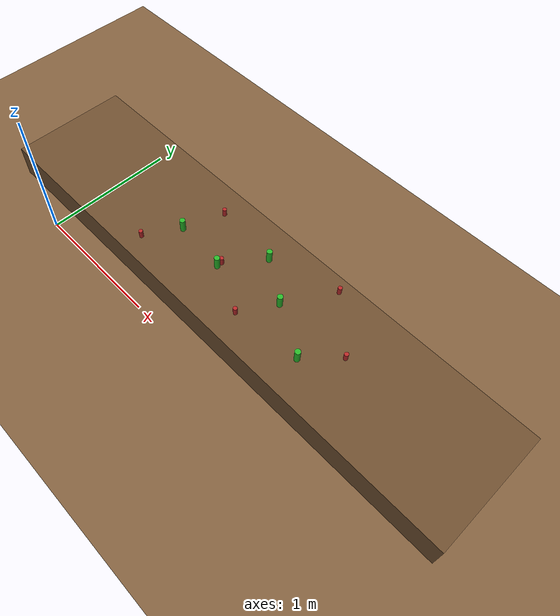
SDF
<sdf version="1.9">
 <world name="robot_row">
  <physics name="1ms" type="ignored">
   <max_step_size>0.001</max_step_size>
   <real_time_factor>1.0</real_time_factor>
  </physics>
  <plugin filename="ignition-gazebo-physics-system" name="ignition::gazebo::systems::Physics"/>
  <plugin filename="ignition-gazebo-scene-broadcaster-system" name="ignition::gazebo::systems::SceneBroadcaster"/>
  <plugin filename="ignition-gazebo-user-commands-system" name="ignition::gazebo::systems::UserCommands"/>
  <light type="directional" name="sun">
   <cast_shadows>false</cast_shadows>
   <pose>0 0 10 0 0 0</pose>
   <diffuse>1 1 1 1</diffuse>
   <specular>0.3 0.3 0.3 1</specular>
   <direction>-0.4 0.4 -0.85</direction>
  </light>
  <model name="furrow_floor">
   <static>true</static>
   <link name="link">
    <collision name="c">
     <geometry><plane><normal>0 0 1</normal><size>100 100</size></plane></geometry>
     <surface><friction><ode><mu>1.0</mu><mu2>1.0</mu2></ode></friction></surface>
    </collision>
    <visual name="v">
     <geometry><plane><normal>0 0 1</normal><size>100 100</size></plane></geometry>
     <material><ambient>0.3 0.22 0.14 1</ambient><diffuse>0.5 0.37 0.24 1</diffuse></material>
    </visual>
   </link>
  </model>
  <model name="bed">
   <static>true</static>
   <pose>1.4 0.600 0.125 0 0 0</pose>
   <link name="link">
    <collision name="c"><geometry><box><size>4.00 0.90 0.25</size></box></geometry></collision>
    <visual name="v">
     <geometry><box><size>4.00 0.90 0.25</size></box></geometry>
     <material><ambient>0.25 0.17 0.10 1</ambient><diffuse>0.42 0.30 0.18 1</diffuse></material>
    </visual>
   </link>
  </model>
  <model name="weed_0">
   <static>true</static>
   <pose>0.70 0.30 0.28 0 0 0</pose>
   <link name="l">
    <visual name="v">
     <geometry><cylinder><radius>0.015</radius><length>0.06</length></cylinder></geometry>
     <material><ambient>0.5 0.1 0.1 1</ambient><diffuse>0.7 0.15 0.15 1</diffuse></material>
    </visual>
   </link>
  </model>
  <model name="weed_1">
   <static>true</static>
   <pose>0.95 0.85 0.28 0 0 0</pose>
   <link name="l">
    <visual name="v">
     <geometry><cylinder><radius>0.015</radius><length>0.06</length></cylinder></geometry>
     <material><ambient>0.5 0.1 0.1 1</ambient><diffuse>0.7 0.15 0.15 1</diffuse></material>
    </visual>
   </link>
  </model>
  <model name="weed_2">
   <static>true</static>
   <pose>1.25 0.55 0.28 0 0 0</pose>
   <link name="l">
    <visual name="v">
     <geometry><cylinder><radius>0.015</radius><length>0.06</length></cylinder></geometry>
     <material><ambient>0.5 0.1 0.1 1</ambient><diffuse>0.7 0.15 0.15 1</diffuse></material>
    </visual>
   </link>
  </model>
  <model name="weed_3">
   <static>true</static>
   <pose>1.60 0.35 0.28 0 0 0</pose>
   <link name="l">
    <visual name="v">
     <geometry><cylinder><radius>0.015</radius><length>0.06</length></cylinder></geometry>
     <material><ambient>0.5 0.1 0.1 1</ambient><diffuse>0.7 0.15 0.15 1</diffuse></material>
    </visual>
   </link>
  </model>
  <model name="weed_4">
   <static>true</static>
   <pose>1.95 0.95 0.28 0 0 0</pose>
   <link name="l">
    <visual name="v">
     <geometry><cylinder><radius>0.015</radius><length>0.06</length></cylinder></geometry>
     <material><ambient>0.5 0.1 0.1 1</ambient><diffuse>0.7 0.15 0.15 1</diffuse></material>
    </visual>
   </link>
  </model>
  <model name="weed_5">
   <static>true</static>
   <pose>2.30 0.62 0.28 0 0 0</pose>
   <link name="l">
    <visual name="v">
     <geometry><cylinder><radius>0.015</radius><length>0.06</length></cylinder></geometry>
     <material><ambient>0.5 0.1 0.1 1</ambient><diffuse>0.7 0.15 0.15 1</diffuse></material>
    </visual>
   </link>
  </model>
  <model name="crop_0">
   <static>true</static>
   <pose>0.85 0.55 0.30 0 0 0</pose>
   <link name="l">
    <visual name="v">
     <geometry><cylinder><radius>0.02</radius><length>0.10</length></cylinder></geometry>
     <material><ambient>0.1 0.5 0.1 1</ambient><diffuse>0.15 0.7 0.15 1</diffuse></material>
    </visual>
   </link>
  </model>
  <model name="crop_1">
   <static>true</static>
   <pose>1.45 0.80 0.30 0 0 0</pose>
   <link name="l">
    <visual name="v">
     <geometry><cylinder><radius>0.02</radius><length>0.10</length></cylinder></geometry>
     <material><ambient>0.1 0.5 0.1 1</ambient><diffuse>0.15 0.7 0.15 1</diffuse></material>
    </visual>
   </link>
  </model>
  <model name="crop_2">
   <static>true</static>
   <pose>1.75 0.60 0.30 0 0 0</pose>
   <link name="l">
    <visual name="v">
     <geometry><cylinder><radius>0.02</radius><length>0.10</length></cylinder></geometry>
     <material><ambient>0.1 0.5 0.1 1</ambient><diffuse>0.15 0.7 0.15 1</diffuse></material>
    </visual>
   </link>
  </model>
  <model name="crop_3">
   <static>true</static>
   <pose>2.10 0.40 0.30 0 0 0</pose>
   <link name="l">
    <visual name="v">
     <geometry><cylinder><radius>0.02</radius><length>0.10</length></cylinder></geometry>
     <material><ambient>0.1 0.5 0.1 1</ambient><diffuse>0.15 0.7 0.15 1</diffuse></material>
    </visual>
   </link>
  </model>
  <model name="crop_4">
   <static>true</static>
   <pose>1.25 0.51 0.30 0 0 0</pose>
   <link name="l">
    <visual name="v">
     <geometry><cylinder><radius>0.02</radius><length>0.10</length></cylinder></geometry>
     <material><ambient>0.1 0.5 0.1 1</ambient><diffuse>0.15 0.7 0.15 1</diffuse></material>
    </visual>
   </link>
  </model>
 </world>
</sdf>
